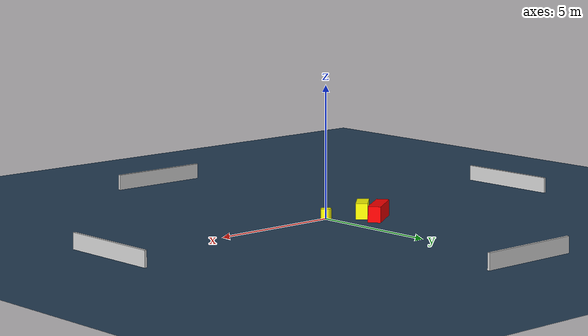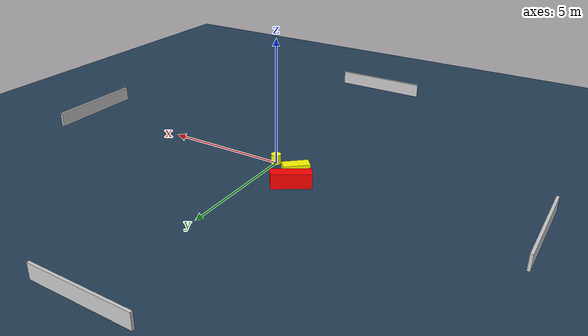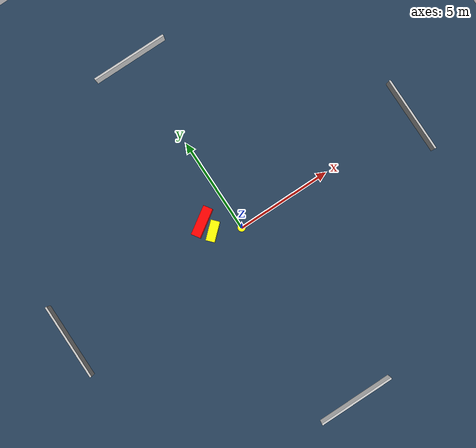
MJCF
<?xml version="1.0" ?>
<mujoco model="generated_environment">
  <option timestep="0.01" integrator="RK4" cone="elliptic"/>
  <default>
    <geom density="1"/>
  </default>
  <asset>
    <texture builtin="gradient" height="3072" name="skybox" rgb1="0.3 0.5 0.7" rgb2="0 0 0" type="skybox" width="512"/>
    <texture builtin="checker" height="300" name="groundplane" rgb1="0.2 0.3 0.4" rgb2="0.1 0.2 0.3" type="2d" width="300"/>
    <material name="groundplane" reflectance="0.2" texrepeat="5 5" texture="groundplane"/>
  </asset>
  <worldbody>
    <light dir="0 0 -1" directional="true" pos="0 0 1.5"/>
    <geom condim="3" friction="0.5 0.005 0.001" material="groundplane" name="floor" pos="0 0 0" size="0 0 0.05" type="plane"/>
    <body name="walls">
      <geom name="wall_1" condim="4" pos="-10.0 0.0 0.3" rgba="0.800000011920929 0.800000011920929 0.800000011920929 1.0" size="0.05 2.0 0.3" type="box"/>
      <geom name="wall_2" condim="4" pos="10.0 0.0 0.3" rgba="0.800000011920929 0.800000011920929 0.800000011920929 1.0" size="0.05 2.0 0.3" type="box"/>
      <geom name="wall_3" condim="4" pos="0.0 -10.0 0.3" rgba="0.800000011920929 0.800000011920929 0.800000011920929 1.0" size="2.0 0.05 0.3" type="box"/>
      <geom name="wall_4" condim="4" pos="0.0 10.0 0.3" rgba="0.800000011920929 0.800000011920929 0.800000011920929 1.0" size="2.0 0.05 0.3" type="box"/>
    </body>
    <body name="robot">
      <joint name="joint_x" type="slide" pos="0 0 0" axis="1 0 0"/>
      <joint name="joint_y" type="slide" pos="0 0 0" axis="0 1 0"/>
      <geom name="robot" type="cylinder" pos="0.0 0.0 0.2" size="0.2 0.2 0.0" mass="5.0" friction="1.0 0.005 0.0001" condim="4" rgba="1.0 1.0 0.0 1.0"/>
    </body>
    <body name="obstacle_1_movable">
      <geom name="obstacle_1_movable" condim="4" pos="-1.2661019069646378 0.6275734174875187 0.3" euler="0 0 132.23636211660155" friction="0.0 0.005 0.001" rgba="1.0 1.0 0.0 1.0" size="0.2237345505019545 0.5208134063519061 0.3" type="box" mass="0.1"/>
      <joint type="free"/>
    </body>
    <body name="obstacle_2_static">
      <geom name="obstacle_2_static" condim="4" pos="-1.4597990822421483 1.2979436771138013 0.3" euler="0 0 303.45649728172674" friction="0.0 0.005 0.001" rgba="1.0 0.0 0.0 1.0" size="0.24096976250994448 0.7672905786302842 0.3" type="box"/>
    </body>
  </worldbody>
  <actuator>
    <motor name="actuator_x" joint="joint_x" gear="1" ctrlrange="-1 1"/>
    <motor name="actuator_y" joint="joint_y" gear="1" ctrlrange="-1 1"/>
  </actuator>
</mujoco>
